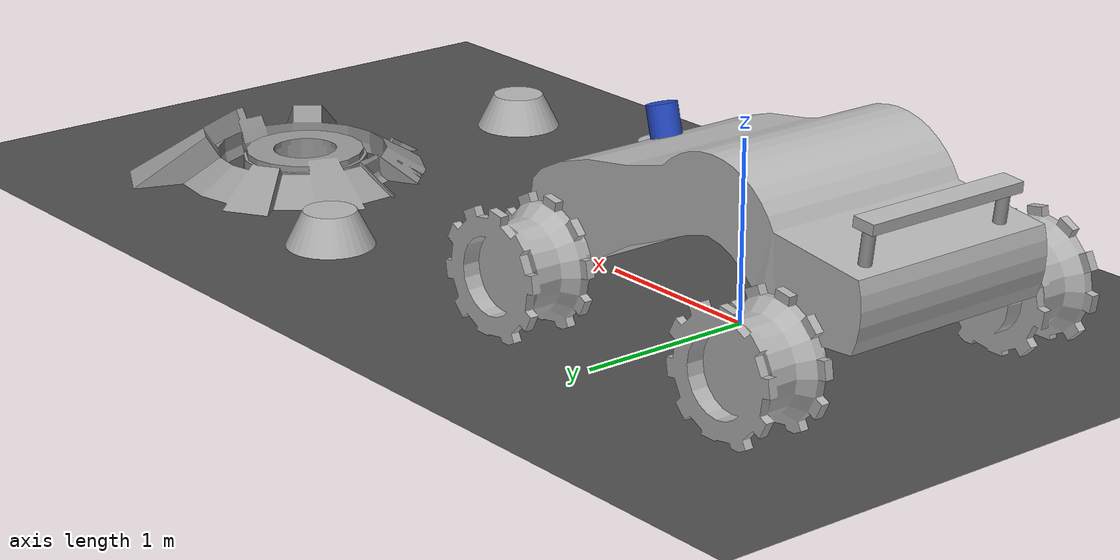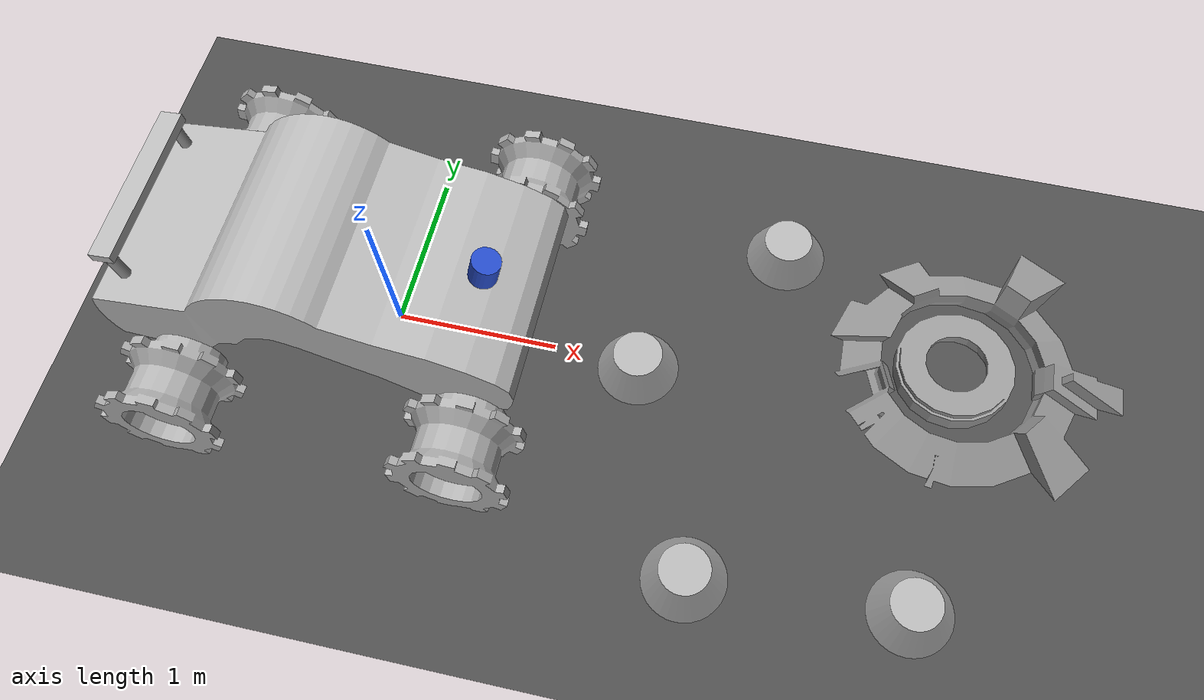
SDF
<sdf version="1.7">
 <world name="default">
  <model name="ground_plane">
   <static>1</static>
   <link name="link">
    <collision name="collision">
     <geometry><plane><normal>0 0 1</normal><size>100 100</size></plane></geometry>
     <surface><friction><ode><mu>100</mu><mu2>50</mu2></ode></friction></surface>
    </collision>
    <visual name="visual">
     <cast_shadows>0</cast_shadows>
     <geometry><plane><normal>0 0 1</normal><size>100 100</size></plane></geometry>
     <material>
      <script><uri>file://media/materials/scripts/gazebo.material</uri><name>Gazebo/DarkGrey</name></script>
     </material>
    </visual>
   </link>
  </model>
  <model name="block_7">
   <link name="link_0">
    <inertial>
     <mass>1</mass>
     <inertia>
      <ixx>0.166667</ixx>
      <ixy>0</ixy>
      <ixz>0</ixz>
      <iyy>0.166667</iyy>
      <iyz>0</iyz>
      <izz>0.166667</izz>
     </inertia>
    </inertial>
    <kinematic>1</kinematic>
    <visual name="visual">
     <pose>0 0 0.1 0 -0 0</pose>
     <geometry>
      <mesh><uri>/home/user/ros2_ws/src/rover_5k/model/block/block.dae</uri><scale>1 1 1</scale></mesh>
     </geometry>
     <material>
      <lighting>1</lighting>
      <script>
       <uri>model://block/materials/scripts</uri>
       <uri>model://block/materials/textures</uri>
       <name>block</name>
      </script>
      <shader type="pixel"><normal_map>__default__</normal_map></shader>
      <ambient>0.3 0.3 0.3 1</ambient>
      <diffuse>0.7 0.7 0.7 1</diffuse>
      <specular>0.01 0.01 0.01 1</specular>
      <emissive>0 0 0 1</emissive>
     </material>
    </visual>
    <collision name="collision">
     <pose>0 0 0.1 0 -0 0</pose>
     <geometry>
      <mesh><uri>/home/user/ros2_ws/src/rover_5k/model/block/block.dae</uri><scale>1 1 1</scale></mesh>
     </geometry>
     <surface>
      <friction>
       <ode><mu>1</mu><mu2>1</mu2><fdir1>0 0 0</fdir1><slip1>0</slip1><slip2>0</slip2></ode>
       <torsional>
        <coefficient>1</coefficient>
        <patch_radius>0</patch_radius>
        <surface_radius>0</surface_radius>
        <use_patch_radius>1</use_patch_radius>
        <ode><slip>0</slip></ode>
       </torsional>
      </friction>
      <bounce><restitution_coefficient>0</restitution_coefficient><threshold>1e+06</threshold></bounce>
      <contact>
       <collide_without_contact>0</collide_without_contact>
       <collide_without_contact_bitmask>1</collide_without_contact_bitmask>
       <collide_bitmask>1</collide_bitmask>
       <ode>
        <soft_cfm>0</soft_cfm>
        <soft_erp>0.2</soft_erp>
        <kp>1e+13</kp>
        <kd>1</kd>
        <max_vel>0.01</max_vel>
        <min_depth>0</min_depth>
       </ode>
       <bullet>
        <split_impulse>1</split_impulse>
        <split_impulse_penetration_threshold>-0.01</split_impulse_penetration_threshold>
        <soft_cfm>0</soft_cfm>
        <soft_erp>0.2</soft_erp>
        <kp>1e+13</kp>
        <kd>1</kd>
       </bullet>
      </contact>
     </surface>
    </collision>
   </link>
   <static>0</static>
   <pose>2.08393 -1.27182 0 0 -0 0</pose>
  </model>
  <model name="block_8">
   <link name="link_0">
    <inertial>
     <mass>1</mass>
     <inertia>
      <ixx>0.166667</ixx>
      <ixy>0</ixy>
      <ixz>0</ixz>
      <iyy>0.166667</iyy>
      <iyz>0</iyz>
      <izz>0.166667</izz>
     </inertia>
    </inertial>
    <kinematic>1</kinematic>
    <visual name="visual">
     <pose>0 0 0.1 0 -0 0</pose>
     <geometry>
      <mesh><uri>/home/user/ros2_ws/src/rover_5k/model/block/block.dae</uri><scale>1 1 1</scale></mesh>
     </geometry>
     <material>
      <lighting>1</lighting>
      <script>
       <uri>model://block/materials/scripts</uri>
       <uri>model://block/materials/textures</uri>
       <name>block</name>
      </script>
      <shader type="pixel"><normal_map>__default__</normal_map></shader>
      <ambient>0.3 0.3 0.3 1</ambient>
      <diffuse>0.7 0.7 0.7 1</diffuse>
      <specular>0.01 0.01 0.01 1</specular>
      <emissive>0 0 0 1</emissive>
     </material>
    </visual>
    <collision name="collision">
     <pose>0 0 0.1 0 -0 0</pose>
     <geometry>
      <mesh><uri>/home/user/ros2_ws/src/rover_5k/model/block/block.dae</uri><scale>1 1 1</scale></mesh>
     </geometry>
     <surface>
      <friction>
       <ode><mu>1</mu><mu2>1</mu2><fdir1>0 0 0</fdir1><slip1>0</slip1><slip2>0</slip2></ode>
       <torsional>
        <coefficient>1</coefficient>
        <patch_radius>0</patch_radius>
        <surface_radius>0</surface_radius>
        <use_patch_radius>1</use_patch_radius>
        <ode><slip>0</slip></ode>
       </torsional>
      </friction>
      <bounce><restitution_coefficient>0</restitution_coefficient><threshold>1e+06</threshold></bounce>
      <contact>
       <collide_without_contact>0</collide_without_contact>
       <collide_without_contact_bitmask>1</collide_without_contact_bitmask>
       <collide_bitmask>1</collide_bitmask>
       <ode>
        <soft_cfm>0</soft_cfm>
        <soft_erp>0.2</soft_erp>
        <kp>1e+13</kp>
        <kd>1</kd>
        <max_vel>0.01</max_vel>
        <min_depth>0</min_depth>
       </ode>
       <bullet>
        <split_impulse>1</split_impulse>
        <split_impulse_penetration_threshold>-0.01</split_impulse_penetration_threshold>
        <soft_cfm>0</soft_cfm>
        <soft_erp>0.2</soft_erp>
        <kp>1e+13</kp>
        <kd>1</kd>
       </bullet>
      </contact>
     </surface>
    </collision>
   </link>
   <static>0</static>
   <pose>2.29947 0.958075 0 0 -0 0</pose>
  </model>
  <model name="block_10">
   <link name="link_0">
    <inertial>
     <mass>1</mass>
     <inertia>
      <ixx>0.166667</ixx>
      <ixy>0</ixy>
      <ixz>0</ixz>
      <iyy>0.166667</iyy>
      <iyz>0</iyz>
      <izz>0.166667</izz>
     </inertia>
    </inertial>
    <kinematic>1</kinematic>
    <visual name="visual">
     <pose>0 0 0.1 0 -0 0</pose>
     <geometry>
      <mesh><uri>/home/user/ros2_ws/src/rover_5k/model/block/block.dae</uri><scale>1 1 1</scale></mesh>
     </geometry>
     <material>
      <lighting>1</lighting>
      <script>
       <uri>model://block/materials/scripts</uri>
       <uri>model://block/materials/textures</uri>
       <name>block</name>
      </script>
      <shader type="pixel"><normal_map>__default__</normal_map></shader>
      <ambient>0.3 0.3 0.3 1</ambient>
      <diffuse>0.7 0.7 0.7 1</diffuse>
      <specular>0.01 0.01 0.01 1</specular>
      <emissive>0 0 0 1</emissive>
     </material>
    </visual>
    <collision name="collision">
     <pose>0 0 0.1 0 -0 0</pose>
     <geometry>
      <mesh><uri>/home/user/ros2_ws/src/rover_5k/model/block/block.dae</uri><scale>1 1 1</scale></mesh>
     </geometry>
     <surface>
      <friction>
       <ode><mu>1</mu><mu2>1</mu2><fdir1>0 0 0</fdir1><slip1>0</slip1><slip2>0</slip2></ode>
       <torsional>
        <coefficient>1</coefficient>
        <patch_radius>0</patch_radius>
        <surface_radius>0</surface_radius>
        <use_patch_radius>1</use_patch_radius>
        <ode><slip>0</slip></ode>
       </torsional>
      </friction>
      <bounce><restitution_coefficient>0</restitution_coefficient><threshold>1e+06</threshold></bounce>
      <contact>
       <collide_without_contact>0</collide_without_contact>
       <collide_without_contact_bitmask>1</collide_without_contact_bitmask>
       <collide_bitmask>1</collide_bitmask>
       <ode>
        <soft_cfm>0</soft_cfm>
        <soft_erp>0.2</soft_erp>
        <kp>1e+13</kp>
        <kd>1</kd>
        <max_vel>0.01</max_vel>
        <min_depth>0</min_depth>
       </ode>
       <bullet>
        <split_impulse>1</split_impulse>
        <split_impulse_penetration_threshold>-0.01</split_impulse_penetration_threshold>
        <soft_cfm>0</soft_cfm>
        <soft_erp>0.2</soft_erp>
        <kp>1e+13</kp>
        <kd>1</kd>
       </bullet>
      </contact>
     </surface>
    </collision>
   </link>
   <static>0</static>
   <pose>3.35846 -1.19015 0 0 -0 0</pose>
  </model>
  <model name="block_11">
   <link name="link_0">
    <inertial>
     <mass>1</mass>
     <inertia>
      <ixx>0.166667</ixx>
      <ixy>0</ixy>
      <ixz>0</ixz>
      <iyy>0.166667</iyy>
      <iyz>0</iyz>
      <izz>0.166667</izz>
     </inertia>
    </inertial>
    <kinematic>1</kinematic>
    <visual name="visual">
     <pose>0 0 0.1 0 -0 0</pose>
     <geometry>
      <mesh><uri>/home/user/ros2_ws/src/rover_5k/model/block/block.dae</uri><scale>1 1 1</scale></mesh>
     </geometry>
     <material>
      <lighting>1</lighting>
      <script>
       <uri>model://block/materials/scripts</uri>
       <uri>model://block/materials/textures</uri>
       <name>block</name>
      </script>
      <shader type="pixel"><normal_map>__default__</normal_map></shader>
      <ambient>0.3 0.3 0.3 1</ambient>
      <diffuse>0.7 0.7 0.7 1</diffuse>
      <specular>0.01 0.01 0.01 1</specular>
      <emissive>0 0 0 1</emissive>
     </material>
    </visual>
    <collision name="collision">
     <pose>0 0 0.1 0 -0 0</pose>
     <geometry>
      <mesh><uri>/home/user/ros2_ws/src/rover_5k/model/block/block.dae</uri><scale>1 1 1</scale></mesh>
     </geometry>
     <surface>
      <friction>
       <ode><mu>1</mu><mu2>1</mu2><fdir1>0 0 0</fdir1><slip1>0</slip1><slip2>0</slip2></ode>
       <torsional>
        <coefficient>1</coefficient>
        <patch_radius>0</patch_radius>
        <surface_radius>0</surface_radius>
        <use_patch_radius>1</use_patch_radius>
        <ode><slip>0</slip></ode>
       </torsional>
      </friction>
      <bounce><restitution_coefficient>0</restitution_coefficient><threshold>1e+06</threshold></bounce>
      <contact>
       <collide_without_contact>0</collide_without_contact>
       <collide_without_contact_bitmask>1</collide_without_contact_bitmask>
       <collide_bitmask>1</collide_bitmask>
       <ode>
        <soft_cfm>0</soft_cfm>
        <soft_erp>0.2</soft_erp>
        <kp>1e+13</kp>
        <kd>1</kd>
        <max_vel>0.01</max_vel>
        <min_depth>0</min_depth>
       </ode>
       <bullet>
        <split_impulse>1</split_impulse>
        <split_impulse_penetration_threshold>-0.01</split_impulse_penetration_threshold>
        <soft_cfm>0</soft_cfm>
        <soft_erp>0.2</soft_erp>
        <kp>1e+13</kp>
        <kd>1</kd>
       </bullet>
      </contact>
     </surface>
    </collision>
   </link>
   <static>0</static>
   <pose>1.5402 -0.030778 0 0 -0 0</pose>
  </model>
  <model name="block2">
   <link name="link_0">
    <inertial>
     <mass>10</mass>
     <inertia>
      <ixx>0.166667</ixx>
      <ixy>0</ixy>
      <ixz>0</ixz>
      <iyy>0.166667</iyy>
      <iyz>0</iyz>
      <izz>0.166667</izz>
     </inertia>
    </inertial>
    <kinematic>1</kinematic>
    <visual name="visual">
     <geometry>
      <mesh><uri>/home/user/ros2_ws/src/rover_5k/model/block2/block2.dae</uri><scale>1 1 1</scale></mesh>
     </geometry>
     <material>
      <lighting>1</lighting>
      <script><uri>file://media/materials/scripts/gazebo.material</uri><name>Gazebo/Grey</name></script>
      <shader type="pixel"><normal_map>__default__</normal_map></shader>
      <ambient>0.3 0.3 0.3 1</ambient>
      <diffuse>0.7 0.7 0.7 1</diffuse>
      <specular>0.01 0.01 0.01 1</specular>
      <emissive>0 0 0 1</emissive>
     </material>
    </visual>
    <collision name="collision">
     <geometry>
      <mesh><uri>/home/user/ros2_ws/src/rover_5k/model/block2/block2.dae</uri><scale>1 1 1</scale></mesh>
     </geometry>
     <surface>
      <friction>
       <ode><mu>1</mu><mu2>1</mu2><fdir1>0 0 0</fdir1><slip1>0</slip1><slip2>0</slip2></ode>
       <torsional>
        <coefficient>1</coefficient>
        <patch_radius>0</patch_radius>
        <surface_radius>0</surface_radius>
        <use_patch_radius>1</use_patch_radius>
        <ode><slip>0</slip></ode>
       </torsional>
      </friction>
      <bounce><restitution_coefficient>0</restitution_coefficient><threshold>1e+06</threshold></bounce>
      <contact>
       <collide_without_contact>0</collide_without_contact>
       <collide_without_contact_bitmask>1</collide_without_contact_bitmask>
       <collide_bitmask>1</collide_bitmask>
       <ode>
        <soft_cfm>0</soft_cfm>
        <soft_erp>0.2</soft_erp>
        <kp>1e+13</kp>
        <kd>1</kd>
        <max_vel>0.01</max_vel>
        <min_depth>0</min_depth>
       </ode>
       <bullet>
        <split_impulse>1</split_impulse>
        <split_impulse_penetration_threshold>-0.01</split_impulse_penetration_threshold>
        <soft_cfm>0</soft_cfm>
        <soft_erp>0.2</soft_erp>
        <kp>1e+13</kp>
        <kd>1</kd>
       </bullet>
      </contact>
     </surface>
    </collision>
   </link>
   <static>0</static>
   <pose>3.47551 0.340274 -0.019946 0 0 -2.40443</pose>
  </model>
  <model name="rover_5k">
   <link name="Body">
    <inertial>
     <mass>20</mass>
     <inertia><ixx>3.22227</ixx><ixy>0</ixy><ixz>0</ixz><iyy>3.22227</iyy><iyz>0</iyz><izz>3.22227</izz></inertia>
    </inertial>
    <pose>0 0 0.5 0 -0 0</pose>
    <visual name="visual">
     <pose>0 0 -0.7 0 0 -1.5707</pose>
     <geometry>
      <mesh><uri>/home/user/ros2_ws/src/rover_5k/model/rover/dae/body.dae</uri><scale>0.5 0.5 0.5</scale></mesh>
     </geometry>
     <material>
      <script>
       <uri>model://rover/materials/scripts</uri>
       <uri>model://rover/materials/textures</uri>
       <name>rover/surface</name>
      </script>
     </material>
    </visual>
    <collision name="collision">
     <pose>0 0 -0.7 0 0 -1.5707</pose>
     <geometry>
      <mesh><uri>/home/user/ros2_ws/src/rover_5k/model/rover/dae/body.dae</uri><scale>0.5 0.5 0.5</scale></mesh>
     </geometry>
     <surface>
      <friction>
       <ode><mu>1</mu><mu2>1</mu2><fdir1>0 0 0</fdir1><slip1>0</slip1><slip2>0</slip2></ode>
       <torsional>
        <coefficient>1</coefficient>
        <patch_radius>0</patch_radius>
        <surface_radius>0</surface_radius>
        <use_patch_radius>1</use_patch_radius>
        <ode><slip>0</slip></ode>
       </torsional>
      </friction>
      <bounce><restitution_coefficient>0</restitution_coefficient><threshold>1e+06</threshold></bounce>
      <contact>
       <collide_without_contact>0</collide_without_contact>
       <collide_without_contact_bitmask>1</collide_without_contact_bitmask>
       <collide_bitmask>1</collide_bitmask>
       <ode>
        <soft_cfm>0</soft_cfm>
        <soft_erp>0.2</soft_erp>
        <kp>1e+13</kp>
        <kd>1</kd>
        <max_vel>0.01</max_vel>
        <min_depth>0</min_depth>
       </ode>
       <bullet>
        <split_impulse>1</split_impulse>
        <split_impulse_penetration_threshold>-0.01</split_impulse_penetration_threshold>
        <soft_cfm>0</soft_cfm>
        <soft_erp>0.2</soft_erp>
        <kp>1e+13</kp>
        <kd>1</kd>
       </bullet>
      </contact>
     </surface>
    </collision>
   </link>
   <link name="Bar">
    <inertial>
     <mass>2</mass>
     <inertia><ixx>0.6</ixx><ixy>0</ixy><ixz>0</ixz><iyy>0.6</iyy><iyz>0</iyz><izz>0.6</izz></inertia>
    </inertial>
    <pose>-1.20237 0.020377 0.781497 0 -0.085775 0</pose>
    <visual name="visual">
     <geometry><box><size>0.132686 1 0.057526</size></box></geometry>
     <material>
      <script>
       <uri>model://rover/materials/scripts</uri>
       <uri>model://rover/materials/textures</uri>
       <name>rover/bar</name>
      </script>
     </material>
    </visual>
    <collision name="collision">
     <geometry><box><size>0.132686 1 0.057526</size></box></geometry>
     <surface>
      <friction>
       <ode><mu>1</mu><mu2>1</mu2><fdir1>0 0 0</fdir1><slip1>0</slip1><slip2>0</slip2></ode>
       <torsional>
        <coefficient>1</coefficient>
        <patch_radius>0</patch_radius>
        <surface_radius>0</surface_radius>
        <use_patch_radius>1</use_patch_radius>
        <ode><slip>0</slip></ode>
       </torsional>
      </friction>
      <bounce><restitution_coefficient>0</restitution_coefficient><threshold>1e+06</threshold></bounce>
      <contact>
       <collide_without_contact>0</collide_without_contact>
       <collide_without_contact_bitmask>1</collide_without_contact_bitmask>
       <collide_bitmask>1</collide_bitmask>
       <ode>
        <soft_cfm>0</soft_cfm>
        <soft_erp>0.2</soft_erp>
        <kp>1e+13</kp>
        <kd>1</kd>
        <max_vel>0.01</max_vel>
        <min_depth>0</min_depth>
       </ode>
       <bullet>
        <split_impulse>1</split_impulse>
        <split_impulse_penetration_threshold>-0.01</split_impulse_penetration_threshold>
        <soft_cfm>0</soft_cfm>
        <soft_erp>0.2</soft_erp>
        <kp>1e+13</kp>
        <kd>1</kd>
       </bullet>
      </contact>
     </surface>
    </collision>
   </link>
   <link name="FL_Wheel">
    <inertial>
     <mass>10</mass>
     <inertia><ixx>1.66667</ixx><ixy>0</ixy><ixz>0</ixz><iyy>1.66667</iyy><iyz>0</iyz><izz>1.66667</izz></inertia>
    </inertial>
    <pose>0.837358 0.924069 0.073926 3.14 -0 0</pose>
    <visual name="visual">
     <pose>0 0 -0.3 0 -0 0</pose>
     <geometry>
      <mesh>
       <uri>/home/user/ros2_ws/src/rover_5k/model/rover/dae/gearwheel.dae</uri>
       <scale>0.5 0.5 0.5</scale>
      </mesh>
     </geometry>
     <material>
      <lighting>1</lighting>
      <script><uri>file://media/materials/scripts/gazebo.material</uri><name>Gazebo/Motorway</name></script>
      <shader type="pixel"><normal_map>__default__</normal_map></shader>
      <ambient>0.3 0.3 0.3 1</ambient>
      <diffuse>0.7 0.7 0.7 1</diffuse>
      <specular>0.01 0.01 0.01 1</specular>
      <emissive>0 0 0 1</emissive>
     </material>
    </visual>
    <collision name="collision">
     <pose>0 0 -0.3 0 -0 0</pose>
     <geometry>
      <mesh>
       <uri>/home/user/ros2_ws/src/rover_5k/model/rover/dae/gearwheel.dae</uri>
       <scale>0.5 0.5 0.5</scale>
      </mesh>
     </geometry>
     <surface>
      <friction>
       <ode><mu>1</mu><mu2>1</mu2><fdir1>0 0 0</fdir1><slip1>0</slip1><slip2>0</slip2></ode>
       <torsional>
        <coefficient>1</coefficient>
        <patch_radius>0</patch_radius>
        <surface_radius>0</surface_radius>
        <use_patch_radius>1</use_patch_radius>
        <ode><slip>0</slip></ode>
       </torsional>
      </friction>
      <bounce><restitution_coefficient>0</restitution_coefficient><threshold>1e+06</threshold></bounce>
      <contact>
       <collide_without_contact>0</collide_without_contact>
       <collide_without_contact_bitmask>1</collide_without_contact_bitmask>
       <collide_bitmask>1</collide_bitmask>
       <ode>
        <soft_cfm>0</soft_cfm>
        <soft_erp>0.2</soft_erp>
        <kp>1e+13</kp>
        <kd>1</kd>
        <max_vel>0.01</max_vel>
        <min_depth>0</min_depth>
       </ode>
       <bullet>
        <split_impulse>1</split_impulse>
        <split_impulse_penetration_threshold>-0.01</split_impulse_penetration_threshold>
        <soft_cfm>0</soft_cfm>
        <soft_erp>0.2</soft_erp>
        <kp>1e+13</kp>
        <kd>1</kd>
       </bullet>
      </contact>
     </surface>
    </collision>
   </link>
   <link name="FR_Wheel">
    <inertial>
     <mass>10</mass>
     <inertia><ixx>1.66667</ixx><ixy>0</ixy><ixz>0</ixz><iyy>1.66667</iyy><iyz>0</iyz><izz>1.66667</izz></inertia>
    </inertial>
    <pose>0.837358 -0.911499 0.074126 0 -0 0</pose>
    <visual name="visual">
     <pose>0 0 -0.3 0 -0 0</pose>
     <geometry>
      <mesh>
       <uri>/home/user/ros2_ws/src/rover_5k/model/rover/dae/gearwheel.dae</uri>
       <scale>0.5 0.5 0.5</scale>
      </mesh>
     </geometry>
     <material>
      <lighting>1</lighting>
      <script><uri>file://media/materials/scripts/gazebo.material</uri><name>Gazebo/Motorway</name></script>
      <shader type="pixel"><normal_map>__default__</normal_map></shader>
      <ambient>0.3 0.3 0.3 1</ambient>
      <diffuse>0.7 0.7 0.7 1</diffuse>
      <specular>0.01 0.01 0.01 1</specular>
      <emissive>0 0 0 1</emissive>
     </material>
    </visual>
    <collision name="collision">
     <pose>0 0 -0.3 0 -0 0</pose>
     <geometry>
      <mesh>
       <uri>/home/user/ros2_ws/src/rover_5k/model/rover/dae/gearwheel.dae</uri>
       <scale>0.5 0.5 0.5</scale>
      </mesh>
     </geometry>
     <surface>
      <friction>
       <ode><mu>1</mu><mu2>1</mu2><fdir1>0 0 0</fdir1><slip1>0</slip1><slip2>0</slip2></ode>
       <torsional>
        <coefficient>1</coefficient>
        <patch_radius>0</patch_radius>
        <surface_radius>0</surface_radius>
        <use_patch_radius>1</use_patch_radius>
        <ode><slip>0</slip></ode>
       </torsional>
      </friction>
      <bounce><restitution_coefficient>0</restitution_coefficient><threshold>1e+06</threshold></bounce>
      <contact>
       <collide_without_contact>0</collide_without_contact>
       <collide_without_contact_bitmask>1</collide_without_contact_bitmask>
       <collide_bitmask>1</collide_bitmask>
       <ode>
        <soft_cfm>0</soft_cfm>
        <soft_erp>0.2</soft_erp>
        <kp>1e+13</kp>
        <kd>1</kd>
        <max_vel>0.01</max_vel>
        <min_depth>0</min_depth>
       </ode>
       <bullet>
        <split_impulse>1</split_impulse>
        <split_impulse_penetration_threshold>-0.01</split_impulse_penetration_threshold>
        <soft_cfm>0</soft_cfm>
        <soft_erp>0.2</soft_erp>
        <kp>1e+13</kp>
        <kd>1</kd>
       </bullet>
      </contact>
     </surface>
    </collision>
   </link>
   <link name="Lidar">
    <inertial>
     <mass>0.00551611</mass>
     <inertia>
      <ixx>2.62879e-05</ixx>
      <ixy>0</ixy>
      <ixz>0</ixz>
      <iyy>2.62879e-05</iyy>
      <iyz>0</iyz>
      <izz>2.02995e-05</izz>
     </inertia>
    </inertial>
    <pose>0.829309 -0.028562 0.677019 0 0.248688 0</pose>
    <visual name="visual">
     <geometry><cylinder><radius>0.0857912</radius><length>0.18737</length></cylinder></geometry>
     <material>
      <lighting>1</lighting>
      <script><uri>file://media/materials/scripts/gazebo.material</uri><name>Gazebo/Blue</name></script>
      <shader type="pixel"/>
      <emissive>0 0 0 1</emissive>
     </material>
    </visual>
    <collision name="collision">
     <geometry><cylinder><radius>0.085791</radius><length>0.18737</length></cylinder></geometry>
     <surface>
      <friction>
       <ode><mu>1</mu><mu2>1</mu2><fdir1>0 0 0</fdir1><slip1>0</slip1><slip2>0</slip2></ode>
       <torsional>
        <coefficient>1</coefficient>
        <patch_radius>0</patch_radius>
        <surface_radius>0</surface_radius>
        <use_patch_radius>1</use_patch_radius>
        <ode><slip>0</slip></ode>
       </torsional>
      </friction>
      <bounce><restitution_coefficient>0</restitution_coefficient><threshold>1e+06</threshold></bounce>
      <contact>
       <collide_without_contact>0</collide_without_contact>
       <collide_without_contact_bitmask>1</collide_without_contact_bitmask>
       <collide_bitmask>1</collide_bitmask>
       <ode>
        <soft_cfm>0</soft_cfm>
        <soft_erp>0.2</soft_erp>
        <kp>1e+13</kp>
        <kd>1</kd>
        <max_vel>0.01</max_vel>
        <min_depth>0</min_depth>
       </ode>
       <bullet>
        <split_impulse>1</split_impulse>
        <split_impulse_penetration_threshold>-0.01</split_impulse_penetration_threshold>
        <soft_cfm>0</soft_cfm>
        <soft_erp>0.2</soft_erp>
        <kp>1e+13</kp>
        <kd>1</kd>
       </bullet>
      </contact>
     </surface>
    </collision>
   </link>
   <link name="RL_Wheel">
    <inertial>
     <mass>10</mass>
     <inertia><ixx>1.66667</ixx><ixy>0</ixy><ixz>0</ixz><iyy>1.66667</iyy><iyz>0</iyz><izz>1.66667</izz></inertia>
    </inertial>
    <pose>-0.875759 0.908026 0.073729 3.14 -0 0</pose>
    <visual name="visual">
     <pose>0 0 -0.3 0 -0 0</pose>
     <geometry>
      <mesh>
       <uri>/home/user/ros2_ws/src/rover_5k/model/rover/dae/gearwheel.dae</uri>
       <scale>0.5 0.5 0.5</scale>
      </mesh>
     </geometry>
     <material>
      <lighting>1</lighting>
      <script><uri>file://media/materials/scripts/gazebo.material</uri><name>Gazebo/Motorway</name></script>
      <shader type="pixel"><normal_map>__default__</normal_map></shader>
      <ambient>0.3 0.3 0.3 1</ambient>
      <diffuse>0.7 0.7 0.7 1</diffuse>
      <specular>0.01 0.01 0.01 1</specular>
      <emissive>0 0 0 1</emissive>
     </material>
    </visual>
    <collision name="collision">
     <pose>0 0 -0.3 0 -0 0</pose>
     <geometry>
      <mesh>
       <uri>/home/user/ros2_ws/src/rover_5k/model/rover/dae/gearwheel.dae</uri>
       <scale>0.5 0.5 0.5</scale>
      </mesh>
     </geometry>
     <surface>
      <friction>
       <ode><mu>1</mu><mu2>1</mu2><fdir1>0 0 0</fdir1><slip1>0</slip1><slip2>0</slip2></ode>
       <torsional>
        <coefficient>1</coefficient>
        <patch_radius>0</patch_radius>
        <surface_radius>0</surface_radius>
        <use_patch_radius>1</use_patch_radius>
        <ode><slip>0</slip></ode>
       </torsional>
      </friction>
      <bounce><restitution_coefficient>0</restitution_coefficient><threshold>1e+06</threshold></bounce>
      <contact>
       <collide_without_contact>0</collide_without_contact>
       <collide_without_contact_bitmask>1</collide_without_contact_bitmask>
       <collide_bitmask>1</collide_bitmask>
       <ode>
        <soft_cfm>0</soft_cfm>
        <soft_erp>0.2</soft_erp>
        <kp>1e+13</kp>
        <kd>1</kd>
        <max_vel>0.01</max_vel>
        <min_depth>0</min_depth>
       </ode>
       <bullet>
        <split_impulse>1</split_impulse>
        <split_impulse_penetration_threshold>-0.01</split_impulse_penetration_threshold>
        <soft_cfm>0</soft_cfm>
        <soft_erp>0.2</soft_erp>
        <kp>1e+13</kp>
        <kd>1</kd>
       </bullet>
      </contact>
     </surface>
    </collision>
   </link>
   <link name="RR_Wheel">
    <inertial>
     <mass>10</mass>
     <inertia><ixx>1.66667</ixx><ixy>0</ixy><ixz>0</ixz><iyy>1.66667</iyy><iyz>0</iyz><izz>1.66667</izz></inertia>
    </inertial>
    <pose>-0.875759 -0.919996 0.074126 0 -0 0</pose>
    <visual name="visual">
     <pose>0 0 -0.3 0 -0 0</pose>
     <geometry>
      <mesh>
       <uri>/home/user/ros2_ws/src/rover_5k/model/rover/dae/gearwheel.dae</uri>
       <scale>0.5 0.5 0.5</scale>
      </mesh>
     </geometry>
     <material>
      <lighting>1</lighting>
      <script><uri>file://media/materials/scripts/gazebo.material</uri><name>Gazebo/Motorway</name></script>
      <shader type="pixel"><normal_map>__default__</normal_map></shader>
      <ambient>0.3 0.3 0.3 1</ambient>
      <diffuse>0.7 0.7 0.7 1</diffuse>
      <specular>0.01 0.01 0.01 1</specular>
      <emissive>0 0 0 1</emissive>
     </material>
    </visual>
    <collision name="collision">
     <pose>0 0 -0.3 0 -0 0</pose>
     <geometry>
      <mesh>
       <uri>/home/user/ros2_ws/src/rover_5k/model/rover/dae/gearwheel.dae</uri>
       <scale>0.5 0.5 0.5</scale>
      </mesh>
     </geometry>
     <surface>
      <friction>
       <ode><mu>1</mu><mu2>1</mu2><fdir1>0 0 0</fdir1><slip1>0</slip1><slip2>0</slip2></ode>
       <torsional>
        <coefficient>1</coefficient>
        <patch_radius>0</patch_radius>
        <surface_radius>0</surface_radius>
        <use_patch_radius>1</use_patch_radius>
        <ode><slip>0</slip></ode>
       </torsional>
      </friction>
      <bounce><restitution_coefficient>0</restitution_coefficient><threshold>1e+06</threshold></bounce>
      <contact>
       <collide_without_contact>0</collide_without_contact>
       <collide_without_contact_bitmask>1</collide_without_contact_bitmask>
       <collide_bitmask>1</collide_bitmask>
       <ode>
        <soft_cfm>0</soft_cfm>
        <soft_erp>0.2</soft_erp>
        <kp>1e+13</kp>
        <kd>1</kd>
        <max_vel>0.01</max_vel>
        <min_depth>0</min_depth>
       </ode>
       <bullet>
        <split_impulse>1</split_impulse>
        <split_impulse_penetration_threshold>-0.01</split_impulse_penetration_threshold>
        <soft_cfm>0</soft_cfm>
        <soft_erp>0.2</soft_erp>
        <kp>1e+13</kp>
        <kd>1</kd>
       </bullet>
      </contact>
     </surface>
    </collision>
   </link>
   <link name="Support_LH">
    <inertial>
     <mass>1</mass>
     <inertia><ixx>0.3</ixx><ixy>0</ixy><ixz>0</ixz><iyy>0.3</iyy><iyz>0</iyz><izz>0.3</izz></inertia>
    </inertial>
    <pose>-1.19118 0.475511 0.665342 0 -0.129355 0</pose>
    <visual name="visual">
     <geometry><cylinder><radius>0.0338522</radius><length>0.19606</length></cylinder></geometry>
     <material>
      <lighting>1</lighting>
      <script><uri>file://media/materials/scripts/gazebo.material</uri><name>Gazebo/Grey</name></script>
      <shader type="pixel"/>
      <emissive>0 0 0 1</emissive>
     </material>
    </visual>
    <collision name="collision">
     <geometry><cylinder><radius>0.033852</radius><length>0.19606</length></cylinder></geometry>
     <surface>
      <friction>
       <ode><mu>1</mu><mu2>1</mu2><fdir1>0 0 0</fdir1><slip1>0</slip1><slip2>0</slip2></ode>
       <torsional>
        <coefficient>1</coefficient>
        <patch_radius>0</patch_radius>
        <surface_radius>0</surface_radius>
        <use_patch_radius>1</use_patch_radius>
        <ode><slip>0</slip></ode>
       </torsional>
      </friction>
      <bounce><restitution_coefficient>0</restitution_coefficient><threshold>1e+06</threshold></bounce>
      <contact>
       <collide_without_contact>0</collide_without_contact>
       <collide_without_contact_bitmask>1</collide_without_contact_bitmask>
       <collide_bitmask>1</collide_bitmask>
       <ode>
        <soft_cfm>0</soft_cfm>
        <soft_erp>0.2</soft_erp>
        <kp>1e+13</kp>
        <kd>1</kd>
        <max_vel>0.01</max_vel>
        <min_depth>0</min_depth>
       </ode>
       <bullet>
        <split_impulse>1</split_impulse>
        <split_impulse_penetration_threshold>-0.01</split_impulse_penetration_threshold>
        <soft_cfm>0</soft_cfm>
        <soft_erp>0.2</soft_erp>
        <kp>1e+13</kp>
        <kd>1</kd>
       </bullet>
      </contact>
     </surface>
    </collision>
   </link>
   <link name="Support_RH">
    <inertial>
     <mass>1</mass>
     <inertia><ixx>0.3</ixx><ixy>0</ixy><ixz>0</ixz><iyy>0.3</iyy><iyz>0</iyz><izz>0.3</izz></inertia>
    </inertial>
    <pose>-1.1735 -0.441038 0.665342 0 -0.129355 0</pose>
    <visual name="visual_0">
     <geometry><cylinder><radius>0.0338522</radius><length>0.19606</length></cylinder></geometry>
     <material>
      <lighting>1</lighting>
      <script><uri>file://media/materials/scripts/gazebo.material</uri><name>Gazebo/Grey</name></script>
      <shader type="pixel"/>
      <emissive>0 0 0 1</emissive>
     </material>
    </visual>
    <collision name="collision">
     <geometry><cylinder><radius>0.033852</radius><length>0.19606</length></cylinder></geometry>
     <surface>
      <friction>
       <ode><mu>1</mu><mu2>1</mu2><fdir1>0 0 0</fdir1><slip1>0</slip1><slip2>0</slip2></ode>
       <torsional>
        <coefficient>1</coefficient>
        <patch_radius>0</patch_radius>
        <surface_radius>0</surface_radius>
        <use_patch_radius>1</use_patch_radius>
        <ode><slip>0</slip></ode>
       </torsional>
      </friction>
      <bounce><restitution_coefficient>0</restitution_coefficient><threshold>1e+06</threshold></bounce>
      <contact>
       <collide_without_contact>0</collide_without_contact>
       <collide_without_contact_bitmask>1</collide_without_contact_bitmask>
       <collide_bitmask>1</collide_bitmask>
       <ode>
        <soft_cfm>0</soft_cfm>
        <soft_erp>0.2</soft_erp>
        <kp>1e+13</kp>
        <kd>1</kd>
        <max_vel>0.01</max_vel>
        <min_depth>0</min_depth>
       </ode>
       <bullet>
        <split_impulse>1</split_impulse>
        <split_impulse_penetration_threshold>-0.01</split_impulse_penetration_threshold>
        <soft_cfm>0</soft_cfm>
        <soft_erp>0.2</soft_erp>
        <kp>1e+13</kp>
        <kd>1</kd>
       </bullet>
      </contact>
     </surface>
    </collision>
   </link>
   <joint name="Body_Support_RH_joint" type="fixed">
    <parent>Body</parent>
    <child>Support_RH</child>
    <physics>
     <ode><limit><cfm>0</cfm><erp>0.2</erp></limit><suspension><cfm>0</cfm><erp>0.2</erp></suspension></ode>
    </physics>
   </joint>
   <joint name="Body_Bar_joint" type="fixed">
    <parent>Body</parent>
    <child>Bar</child>
    <physics>
     <ode><limit><cfm>0</cfm><erp>0.2</erp></limit><suspension><cfm>0</cfm><erp>0.2</erp></suspension></ode>
    </physics>
   </joint>
   <joint name="Body_Lidar_joint" type="fixed">
    <parent>Body</parent>
    <child>Lidar</child>
    <physics>
     <ode><limit><cfm>0</cfm><erp>0.2</erp></limit><suspension><cfm>0</cfm><erp>0.2</erp></suspension></ode>
    </physics>
   </joint>
   <joint name="Body_Support_LH_joint" type="fixed">
    <parent>Body</parent>
    <child>Support_LH</child>
    <physics>
     <ode><limit><cfm>0</cfm><erp>0.2</erp></limit><suspension><cfm>0</cfm><erp>0.2</erp></suspension></ode>
    </physics>
   </joint>
   <joint name="FL_joint" type="revolute">
    <parent>Body</parent>
    <child>FL_Wheel</child>
    <axis>
     <xyz>0 -1 0</xyz>
     <limit>
      <lower>-1.79769e+308</lower>
      <upper>1.79769e+308</upper>
      <effort>-1</effort>
      <velocity>-1</velocity>
     </limit>
     <dynamics>
      <spring_reference>0</spring_reference>
      <spring_stiffness>0</spring_stiffness>
      <damping>0</damping>
      <friction>0</friction>
     </dynamics>
    </axis>
    <physics>
     <ode><limit><cfm>0</cfm><erp>0.2</erp></limit><suspension><cfm>0</cfm><erp>0.2</erp></suspension></ode>
    </physics>
   </joint>
   <joint name="FR_joint" type="revolute">
    <parent>Body</parent>
    <child>FR_Wheel</child>
    <axis>
     <xyz>0 1 0</xyz>
     <limit>
      <lower>-1.79769e+308</lower>
      <upper>1.79769e+308</upper>
      <effort>-1</effort>
      <velocity>-1</velocity>
     </limit>
     <dynamics>
      <spring_reference>0</spring_reference>
      <spring_stiffness>0</spring_stiffness>
      <damping>0</damping>
      <friction>0</friction>
     </dynamics>
    </axis>
    <physics>
     <ode><limit><cfm>0</cfm><erp>0.2</erp></limit><suspension><cfm>0</cfm><erp>0.2</erp></suspension></ode>
    </physics>
   </joint>
   <joint name="RL_joint" type="revolute">
    <parent>Body</parent>
    <child>RL_Wheel</child>
    <axis>
     <xyz>0 -1 0</xyz>
     <limit>
      <lower>-1.79769e+308</lower>
      <upper>1.79769e+308</upper>
      <effort>-1</effort>
      <velocity>-1</velocity>
     </limit>
     <dynamics>
      <spring_reference>0</spring_reference>
      <spring_stiffness>0</spring_stiffness>
      <damping>0</damping>
      <friction>0</friction>
     </dynamics>
    </axis>
    <physics>
     <ode><limit><cfm>0</cfm><erp>0.2</erp></limit><suspension><cfm>0</cfm><erp>0.2</erp></suspension></ode>
    </physics>
   </joint>
   <joint name="RR_joint" type="revolute">
    <parent>Body</parent>
    <child>RR_Wheel</child>
    <axis>
     <xyz>0 1 0</xyz>
     <limit>
      <lower>-1.79769e+308</lower>
      <upper>1.79769e+308</upper>
      <effort>-1</effort>
      <velocity>-1</velocity>
     </limit>
     <dynamics>
      <spring_reference>0</spring_reference>
      <spring_stiffness>0</spring_stiffness>
      <damping>0</damping>
      <friction>0</friction>
     </dynamics>
    </axis>
    <physics>
     <ode><limit><cfm>0</cfm><erp>0.2</erp></limit><suspension><cfm>0</cfm><erp>0.2</erp></suspension></ode>
    </physics>
   </joint>
   <joint name="Bar_Support_LH_joint" type="fixed">
    <parent>Support_LH</parent>
    <child>Bar</child>
    <physics>
     <ode><limit><cfm>0</cfm><erp>0.2</erp></limit><suspension><cfm>0</cfm><erp>0.2</erp></suspension></ode>
    </physics>
   </joint>
   <joint name="Bar_Support_RH_Joint" type="fixed">
    <parent>Support_RH</parent>
    <child>Bar</child>
    <physics>
     <ode><limit><cfm>0</cfm><erp>0.2</erp></limit><suspension><cfm>0</cfm><erp>0.2</erp></suspension></ode>
    </physics>
   </joint>
   <static>0</static>
   <plugin name="diff_front" filename="libgazebo_ros_diff_drive.so">
    <ros><namespace>/rover_5k</namespace></ros>
    <left_joint>FL_joint</left_joint>
    <right_joint>FR_joint</right_joint>
    <wheel_separation>1.65</wheel_separation>
    <wheel_diameter>0.6</wheel_diameter>
    <max_wheel_torque>20</max_wheel_torque>
    <max_wheel_acceleration>1.0</max_wheel_acceleration>
    <publish_odom>1</publish_odom>
    <publish_odom_tf>1</publish_odom_tf>
    <odometry_frame>odom_demo</odometry_frame>
    <robot_base_frame>Body</robot_base_frame>
   </plugin>
   <plugin name="diff_rear" filename="libgazebo_ros_diff_drive.so">
    <ros><namespace>/rover_5k</namespace></ros>
    <left_joint>RL_joint</left_joint>
    <right_joint>RR_joint</right_joint>
    <wheel_separation>1.65</wheel_separation>
    <wheel_diameter>0.6</wheel_diameter>
    <max_wheel_torque>20</max_wheel_torque>
    <max_wheel_acceleration>1.0</max_wheel_acceleration>
    <publish_odom>1</publish_odom>
    <publish_odom_tf>1</publish_odom_tf>
    <odometry_frame>odom_demo</odometry_frame>
    <robot_base_frame>Body</robot_base_frame>
   </plugin>
   <pose>-0.151046 -0.022612 0.240255 0 -0 0</pose>
  </model>
 </world>
</sdf>
